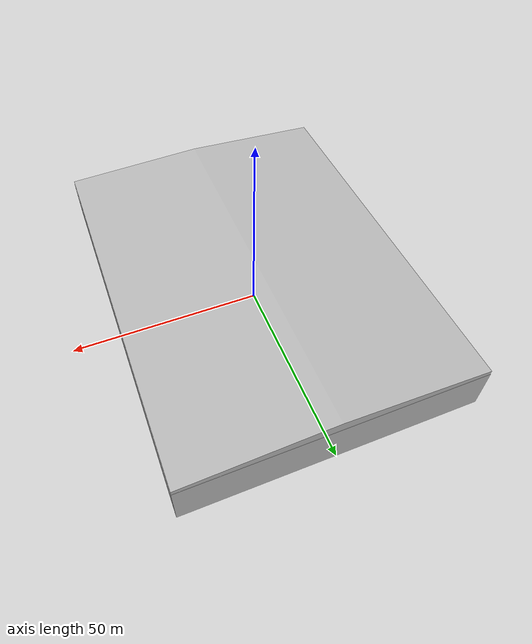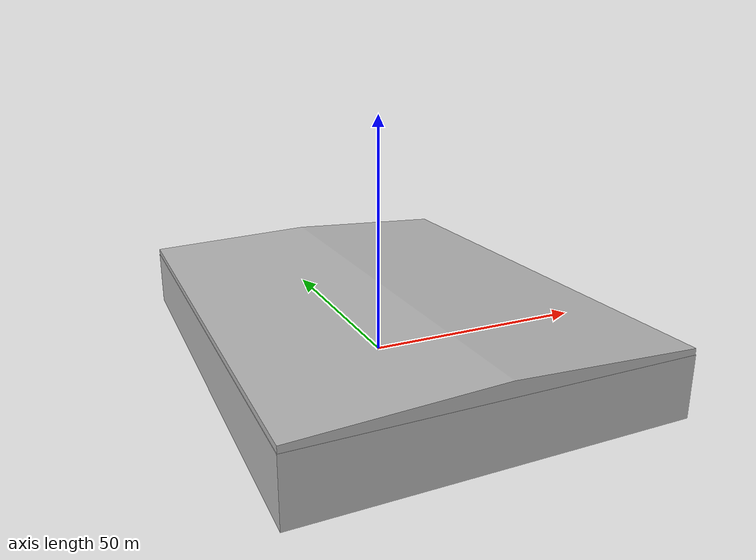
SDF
<sdf version="1.6">
 <world name="default">
  <gravity>0 0 -9.8</gravity>
  <physics name="default_physics" default="0" type="ode">
   <max_step_size>0.001</max_step_size>
   <real_time_factor>1</real_time_factor>
   <real_time_update_rate>1000</real_time_update_rate>
  </physics>
  <model name="aws_robomaker_warehouse_Roof_01">
   <include><uri>model://aws_robomaker_warehouse_Roof_01</uri></include>
   <pose>0 0 -0.05 0 0 0</pose>
  </model>
  <model name="aws_robomaker_warehouse_Ground_01">
   <include><uri>model://aws_robomaker_warehouse_Ground_01</uri></include>
   <pose>0 0 0.04 0 0 0</pose>
  </model>
  <model name="aws_robomaker_warehouse_Roadblock_01">
   <include><uri>model://aws_robomaker_warehouse_Roadblock_01</uri></include>
   <pose>26.025946 -27.888329 0.016994 0 0 0</pose>
  </model>
  <model name="aws_robomaker_warehouse_ShelfB_01_001">
   <include><uri>model://aws_robomaker_warehouse_ShelfB_01</uri></include>
   <pose>9.788294 9.606236 0 0 0 0</pose>
  </model>
  <model name="aws_robomaker_warehouse_ShelfB_01_002">
   <include><uri>model://aws_robomaker_warehouse_ShelfB_01</uri></include>
   <pose>9.788294 3.731951 0 0 0 0</pose>
  </model>
  <model name="aws_robomaker_warehouse_ShelfB_01_003">
   <include><uri>model://aws_robomaker_warehouse_ShelfB_01</uri></include>
   <pose>9.788294 -5.486768 0 0 0 3.122540</pose>
  </model>
  <model name="aws_robomaker_warehouse_ShelfC_01_001">
   <include><uri>model://aws_robomaker_warehouse_ShelfC_01</uri></include>
   <pose>9.788294 -2.508742 0 0 0 0</pose>
  </model>
  <model name="aws_robomaker_warehouse_ShelfC_01_002">
   <include><uri>model://aws_robomaker_warehouse_ShelfC_01</uri></include>
   <pose>9.788294 6.690066 0 0 0 0</pose>
  </model>
  <model name="aws_robomaker_warehouse_ShelfC_01_003">
   <include><uri>model://aws_robomaker_warehouse_ShelfC_01</uri></include>
   <pose>9.788294 0.343347 0 0 0 0</pose>
  </model>
  <model name="aws_robomaker_warehouse_Wall_01">
   <include><uri>model://aws_robomaker_warehouse_Wall_01</uri></include>
  </model>
  <light name="Warehouse_CeilingLight_001" type="point">
   <pose>-20 30 14 0 0 0</pose>
   <diffuse>0.5 0.5 0.5 1</diffuse>
   <specular>0.2 0.2 0.2 1</specular>
   <attenuation>
    <range>100</range>
    <constant>0.01</constant>
    <linear>0.01</linear>
    <quadratic>0.001</quadratic>
   </attenuation>
   <direction>0.1 0.1 -1</direction>
  </light>
  <light name="Warehouse_CeilingLight_002" type="point">
   <pose>-20 -30 14 0 0 0</pose>
   <diffuse>0.5 0.5 0.5 1</diffuse>
   <specular>0.2 0.2 0.2 1</specular>
   <attenuation>
    <range>100</range>
    <constant>0.01</constant>
    <linear>0.01</linear>
    <quadratic>0.001</quadratic>
   </attenuation>
   <direction>0.1 0.1 -1</direction>
  </light>
  <light name="Warehouse_CeilingLight_003" type="point">
   <pose>0 0 14 0 0 0</pose>
   <diffuse>0.5 0.5 0.5 1</diffuse>
   <specular>0.2 0.2 0.2 1</specular>
   <attenuation>
    <range>100</range>
    <constant>0.01</constant>
    <linear>0.01</linear>
    <quadratic>0.001</quadratic>
   </attenuation>
   <direction>0.1 0.1 -1</direction>
  </light>
  <light name="Warehouse_CeilingLight_004" type="point">
   <pose>20 -30 14 0 0 0</pose>
   <diffuse>0.5 0.5 0.5 1</diffuse>
   <specular>0.2 0.2 0.2 1</specular>
   <attenuation>
    <range>100</range>
    <constant>0.01</constant>
    <linear>0.01</linear>
    <quadratic>0.001</quadratic>
   </attenuation>
   <direction>0.1 0.1 -1</direction>
  </light>
  <light name="Warehouse_CeilingLight_005" type="point">
   <pose>20 30 14 0 0 0</pose>
   <diffuse>0.5 0.5 0.5 1</diffuse>
   <specular>0.2 0.2 0.2 1</specular>
   <attenuation>
    <range>100</range>
    <constant>0.01</constant>
    <linear>0.01</linear>
    <quadratic>0.001</quadratic>
   </attenuation>
   <direction>0.1 0.1 -1</direction>
  </light>
 </world>
</sdf>

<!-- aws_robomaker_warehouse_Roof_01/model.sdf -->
<sdf version="1.6">
  <model name="aws_robomaker_warehouse_Roof_01">
    <link name="link">
      <inertial>
        <mass>1000</mass>
        <pose frame=''>0 0 0 0 0 0</pose>
        <inertia>
          <ixx>834024.533</ixx>
          <ixy>0</ixy>
          <ixz>0</ixz>
          <iyy>459441.200</iyy>
          <iyz>0</iyz>
          <izz>1302083.333</izz>
        </inertia>
      </inertial>
      <collision name="collision">
        <geometry>
          <mesh>
            <uri>file://models/aws_robomaker_warehouse_Roof_01/meshes/aws_robomaker_warehouse_Roof_01_collision.DAE</uri>
            <scale>1 1 1</scale>
          </mesh>
        </geometry>
		<surface>
          <friction>
            <ode>
              <mu>0.6</mu>
              <mu2>0.6</mu2>
              <fdir1>0 0 0</fdir1>
              <slip1>0</slip1>
              <slip2>0</slip2>
            </ode>
            <torsional>
              <coefficient>1</coefficient>
              <patch_radius>0</patch_radius>
              <surface_radius>0</surface_radius>
              <use_patch_radius>1</use_patch_radius>
              <ode>
                <slip>0</slip>
              </ode>
            </torsional>
          </friction>
        </surface>
      </collision>
      <visual name="visual">
	    <geometry>
          <mesh>
            <uri>file://models/aws_robomaker_warehouse_Roof_01/meshes/aws_robomaker_warehouse_Roof_01_visual.DAE</uri>
          </mesh>
        </geometry>
      <meta> <layer> 4 </layer></meta>
    </visual>
    </link>
    <static>1</static>
  </model>
</sdf>

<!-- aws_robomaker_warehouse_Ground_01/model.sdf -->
<sdf version="1.6">
  <model name="aws_robomaker_warehouse_Ground_01">
    <link name="link">
      <inertial>
        <mass>1000</mass>
		<inertia>
          <ixx>1200083.33</ixx>
          <ixy>0</ixy>
          <ixz>0</ixz>
          <iyy>8333416.66</iyy>
          <iyz>0</iyz>
          <izz>2033333.33</izz>
        </inertia>
      </inertial>
      <collision name="collision">
        <geometry>
          <mesh>
            <uri>file://models/aws_robomaker_warehouse_Ground_01/meshes/aws_robomaker_warehouse_Ground_01_collision.DAE</uri>
            <scale>1 1 1</scale>
          </mesh>
        </geometry>
        <surface>
          <friction>
            <ode>
              <mu>0.3</mu>
              <mu2>0.3</mu2>
              <fdir1>0 0 0</fdir1>
              <slip1>0</slip1>
              <slip2>0</slip2>
            </ode>
          </friction>
        </surface>
      </collision>
      <visual name="visual">
	    <geometry>
          <mesh>
            <uri>file://models/aws_robomaker_warehouse_Ground_01/meshes/aws_robomaker_warehouse_Ground_01_visual.DAE</uri>
          </mesh>
        </geometry>
      <meta> <layer> 1 </layer></meta>
</visual>
    </link>
<static>1</static>
  </model>
</sdf>

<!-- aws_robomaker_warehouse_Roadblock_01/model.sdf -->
<sdf version="1.6">
  <model name="aws_robomaker_warehouse_Roadblock_01">
    <link name="link">
      <inertial>
        <mass>10</mass>
        <inertia>
          <ixx>0.144</ixx>
          <ixy>0</ixy>
          <ixz>0</ixz>
          <iyy>411.420</iyy>
          <iyz>0</iyz>
          <izz>411.559</izz>
        </inertia>
      </inertial>
      <collision name="collision">
        <geometry>
          <mesh>
            <uri>file://models/aws_robomaker_warehouse_Roadblock_01/meshes/aws_robomaker_warehouse_Roadblock_01_collision.DAE</uri>
            <scale>1 1 1</scale>
          </mesh>
        </geometry>
		<surface>
          <friction>
            <ode>
              <mu>0.5</mu>
              <mu2>0.5</mu2>
              <fdir1>0 0 0</fdir1>
              <slip1>0</slip1>
              <slip2>0</slip2>
            </ode>
        </friction>
          </surface>
      </collision>
      <visual name="visual">
	    <geometry>
          <mesh>
            <uri>file://models/aws_robomaker_warehouse_Roadblock_01/meshes/aws_robomaker_warehouse_Roadblock_01_visual.DAE</uri>
          </mesh>
        </geometry>
      <meta> <layer> 1 </layer></meta>
</visual>
    </link>
<static>1</static>
  </model>
</sdf>

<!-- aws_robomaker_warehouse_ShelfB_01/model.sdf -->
<sdf version="1.6">
  <model name="aws_robomaker_warehouse_ShelfB_01">
    <link name="link">
      <inertial>
        <mass>50</mass>
        <inertia>
          <ixx>259.910</ixx>
          <ixy>0</ixy>
          <ixz>0</ixz>
          <iyy>764.644</iyy>
          <iyz>0</iyz>
          <izz>519.774</izz>
        </inertia>
      </inertial>
      <collision name="collision">
        <geometry>
          <mesh>
            <uri>file://models/aws_robomaker_warehouse_ShelfB_01/meshes/aws_robomaker_warehouse_ShelfB_01_collision.DAE</uri>
            <scale>1 1 1</scale>
          </mesh>
        </geometry>
		<surface>
          <friction>
            <ode>
              <mu>0.2</mu>
              <mu2>0.2</mu2>
              <fdir1>0 0 0</fdir1>
              <slip1>0</slip1>
              <slip2>0</slip2>
            </ode>
        </friction>
          </surface>
      </collision>
      <visual name="visual">
	    <geometry>
          <mesh>
            <uri>file://models/aws_robomaker_warehouse_ShelfB_01/meshes/aws_robomaker_warehouse_ShelfB_01_visual.DAE</uri>
          </mesh>
        </geometry>
      <meta> <layer> 1 </layer></meta>
</visual>
    </link>
<static>1</static>
  </model>
</sdf>

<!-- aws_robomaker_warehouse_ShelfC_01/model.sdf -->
<sdf version="1.6">
  <model name="aws_robomaker_warehouse_ShelfC_01">
    <link name="link">
      <inertial>
        <mass>50</mass>
        <inertia>
          <ixx>259.910</ixx>
          <ixy>0</ixy>
          <ixz>0</ixz>
          <iyy>764.644</iyy>
          <iyz>0</iyz>
          <izz>519.774</izz>
        </inertia>
      </inertial>
      <collision name="collision">
        <geometry>
          <mesh>
            <uri>file://models/aws_robomaker_warehouse_ShelfC_01/meshes/aws_robomaker_warehouse_ShelfC_01_collision.DAE</uri>
            <scale>1 1 1</scale>
          </mesh>
        </geometry>
		<surface>
          <friction>
            <ode>
              <mu>0.2</mu>
              <mu2>0.2</mu2>
              <fdir1>0 0 0</fdir1>
              <slip1>0</slip1>
              <slip2>0</slip2>
            </ode>
        </friction>
          </surface>
      </collision>
      <visual name="visual">
	    <geometry>
          <mesh>
            <uri>file://models/aws_robomaker_warehouse_ShelfC_01/meshes/aws_robomaker_warehouse_ShelfC_01_visual.DAE</uri>
          </mesh>
        </geometry>
      <meta> <layer> 1 </layer></meta>
     </visual>
    </link>
<static>1</static>
  </model>
</sdf>

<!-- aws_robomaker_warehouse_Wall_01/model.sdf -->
<sdf version="1.6">
  <model name="aws_robomaker_warehouse_Wall_01">
    <link name="link">
      <inertial>
        <mass>1000</mass>
        <inertia>
          <ixx>840083.33</ixx>
          <ixy>0</ixy>
          <ixz>0</ixz>
          <iyy>475500.0</iyy>
          <iyz>0</iyz>
          <izz>1302083.33</izz>
        </inertia>
      </inertial>
      <collision name="collision">
        <geometry>
          <mesh>
            <uri>file://models/aws_robomaker_warehouse_Wall_01/meshes/aws_robomaker_warehouse_Wall_01_collision.DAE</uri>
            <scale>1 1 1</scale>
          </mesh>
        </geometry>
		<surface>
          <friction>
            <ode>
              <mu>0.5</mu>
              <mu2>0.5</mu2>
              <fdir1>0 0 0</fdir1>
              <slip1>0</slip1>
              <slip2>0</slip2>
            </ode>
        </friction>
          </surface>
      </collision>
      <visual name="visual">
	    <geometry>
          <mesh>
            <uri>file://models/aws_robomaker_warehouse_Wall_01/meshes/aws_robomaker_warehouse_Wall_01_visual.DAE</uri>
          </mesh>
        </geometry>
      <meta> <layer> 2 </layer></meta>
</visual>
    </link>
<static>1</static>
  </model>
</sdf>
